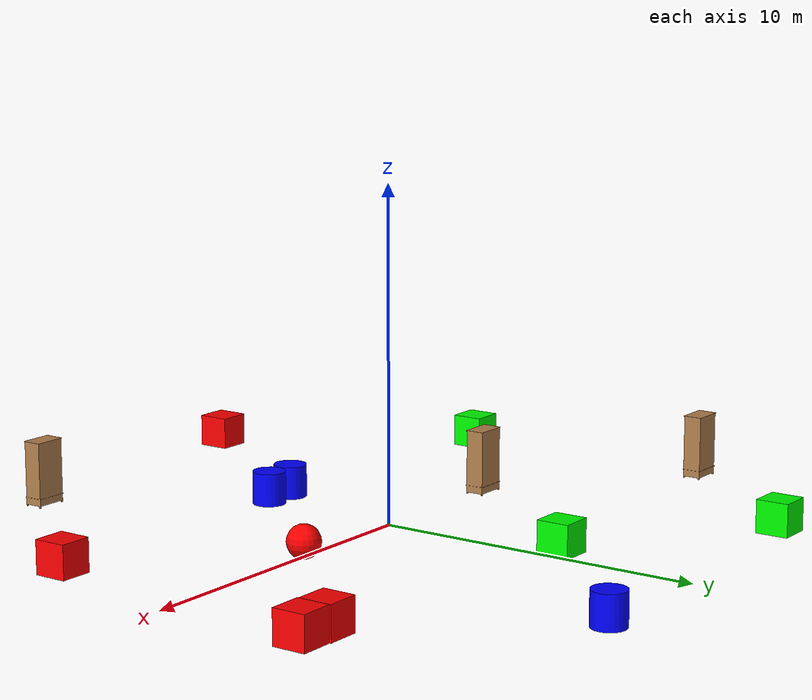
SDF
<?xml version='1.0'?>
<sdf version='1.6'>
  <model name='final'>
   <pose frame=''>0 0 0.35 0 -0 0</pose>
    <link name='link_0'>
      <inertial>
        <mass>1</mass>
        <inertia>
          <ixx>0.1</ixx>
          <ixy>0</ixy>
          <ixz>0</ixz>
          <iyy>0.1</iyy>
          <iyz>0</iyz>
          <izz>0.1</izz>
        </inertia>
      </inertial>
      <pose frame=''>4.00755 0.011429 0.107143 0 -0 0</pose>
      <visual name='visual'>
        <pose frame=''>0 0 0 0 -0 0</pose>
        <geometry>
          <sphere>
            <radius>0.5</radius>
          </sphere>
        </geometry>
        <material>
          <lighting>1</lighting>
          <script>
            <uri>file://media/materials/scripts/gazebo.material</uri>
            <name>Gazebo/Grey</name>
          </script>
            <ambient>1 0 0 1</ambient>
            <diffuse>1 0 0 1</diffuse>
            <specular>0 0 0 0</specular>
            <emissive>0 0 0 0</emissive>
        </material>
        <transparency>0</transparency>
        <cast_shadows>1</cast_shadows>
      </visual>
      <collision name='collision'>
        <laser_retro>0</laser_retro>
        <max_contacts>10</max_contacts>
        <pose frame=''>0 0 0 0 -0 0</pose>
        <geometry>
          <sphere>
            <radius>0.5</radius>
          </sphere>
        </geometry>
        <surface>
          <friction>
            <ode>
              <mu>1</mu>
              <mu2>1</mu2>
              <fdir1>0 0 0</fdir1>
              <slip1>0</slip1>
              <slip2>0</slip2>
            </ode>
            <torsional>
              <coefficient>1</coefficient>
              <patch_radius>0</patch_radius>
              <surface_radius>0</surface_radius>
              <use_patch_radius>1</use_patch_radius>
              <ode>
                <slip>0</slip>
              </ode>
            </torsional>
          </friction>
          <bounce>
            <restitution_coefficient>0</restitution_coefficient>
            <threshold>1e+06</threshold>
          </bounce>
          <contact>
            <collide_without_contact>0</collide_without_contact>
            <collide_without_contact_bitmask>1</collide_without_contact_bitmask>
            <collide_bitmask>1</collide_bitmask>
            <ode>
              <soft_cfm>0</soft_cfm>
              <soft_erp>0.2</soft_erp>
              <kp>1e+13</kp>
              <kd>1</kd>
              <max_vel>0.01</max_vel>
              <min_depth>0</min_depth>
            </ode>
            <bullet>
              <split_impulse>1</split_impulse>
              <split_impulse_penetration_threshold>-0.01</split_impulse_penetration_threshold>
              <soft_cfm>0</soft_cfm>
              <soft_erp>0.2</soft_erp>
              <kp>1e+13</kp>
              <kd>1</kd>
            </bullet>
          </contact>
        </surface>
      </collision>
    </link>
    <link name='link_1'>
      <inertial>
        <mass>1</mass>
        <inertia>
          <ixx>0.166667</ixx>
          <ixy>0</ixy>
          <ixz>0</ixz>
          <iyy>0.166667</iyy>
          <iyz>0</iyz>
          <izz>0.166667</izz>
        </inertia>
      </inertial>
      <pose frame=''>8.89484 4.56414 0.107143 0 -0 0</pose>
      <visual name='visual'>
        <pose frame=''>0 0 0 0 -0 0</pose>
        <geometry>
          <box>
            <size>1 1 1</size>
          </box>
        </geometry>
        <material>
          <lighting>1</lighting>
          <script>
            <uri>file://media/materials/scripts/gazebo.material</uri>
            <name>Gazebo/Grey</name>
          </script>
            <ambient>1 0 0 1</ambient>
            <diffuse>1 0 0 1</diffuse>
            <specular>0 0 0 0</specular>
            <emissive>0 0 0 0</emissive>
        </material>
        <transparency>0</transparency>
        <cast_shadows>1</cast_shadows>
      </visual>
      <collision name='collision'>
        <laser_retro>0</laser_retro>
        <max_contacts>10</max_contacts>
        <pose frame=''>0 0 0 0 -0 0</pose>
        <geometry>
          <box>
            <size>1 1 1</size>
          </box>
        </geometry>
        <surface>
          <friction>
            <ode>
              <mu>1</mu>
              <mu2>1</mu2>
              <fdir1>0 0 0</fdir1>
              <slip1>0</slip1>
              <slip2>0</slip2>
            </ode>
            <torsional>
              <coefficient>1</coefficient>
              <patch_radius>0</patch_radius>
              <surface_radius>0</surface_radius>
              <use_patch_radius>1</use_patch_radius>
              <ode>
                <slip>0</slip>
              </ode>
            </torsional>
          </friction>
          <bounce>
            <restitution_coefficient>0</restitution_coefficient>
            <threshold>1e+06</threshold>
          </bounce>
          <contact>
            <collide_without_contact>0</collide_without_contact>
            <collide_without_contact_bitmask>1</collide_without_contact_bitmask>
            <collide_bitmask>1</collide_bitmask>
            <ode>
              <soft_cfm>0</soft_cfm>
              <soft_erp>0.2</soft_erp>
              <kp>1e+13</kp>
              <kd>1</kd>
              <max_vel>0.01</max_vel>
              <min_depth>0</min_depth>
            </ode>
            <bullet>
              <split_impulse>1</split_impulse>
              <split_impulse_penetration_threshold>-0.01</split_impulse_penetration_threshold>
              <soft_cfm>0</soft_cfm>
              <soft_erp>0.2</soft_erp>
              <kp>1e+13</kp>
              <kd>1</kd>
            </bullet>
          </contact>
        </surface>
      </collision>
    </link>
    <link name='link_1_clone'>
      <inertial>
        <mass>1</mass>
        <inertia>
          <ixx>0.166667</ixx>
          <ixy>0</ixy>
          <ixz>0</ixz>
          <iyy>0.166667</iyy>
          <iyz>0</iyz>
          <izz>0.166667</izz>
        </inertia>
      </inertial>
      <pose frame=''>9.90892 4.52854 0.107143 0 -0 0</pose>
      <visual name='visual'>
        <pose frame=''>0 0 0 0 -0 0</pose>
        <geometry>
          <box>
            <size>1 1 1</size>
          </box>
        </geometry>
        <material>
          <lighting>1</lighting>
          <script>
            <uri>file://media/materials/scripts/gazebo.material</uri>
            <name>Gazebo/Grey</name>
          </script>
            <ambient>1 0 0 1</ambient>
            <diffuse>1 0 0 1</diffuse>
            <specular>0 0 0 0</specular>
            <emissive>0 0 0 0</emissive>
          <shader type='pixel'/>
        </material>
        <transparency>0</transparency>
        <cast_shadows>1</cast_shadows>
      </visual>
      <collision name='collision'>
        <laser_retro>0</laser_retro>
        <max_contacts>10</max_contacts>
        <pose frame=''>0 0 0 0 -0 0</pose>
        <geometry>
          <box>
            <size>1 1 1</size>
          </box>
        </geometry>
        <surface>
          <friction>
            <ode>
              <mu>1</mu>
              <mu2>1</mu2>
              <fdir1>0 0 0</fdir1>
              <slip1>0</slip1>
              <slip2>0</slip2>
            </ode>
            <torsional>
              <coefficient>1</coefficient>
              <patch_radius>0</patch_radius>
              <surface_radius>0</surface_radius>
              <use_patch_radius>1</use_patch_radius>
              <ode>
                <slip>0</slip>
              </ode>
            </torsional>
          </friction>
          <bounce>
            <restitution_coefficient>0</restitution_coefficient>
            <threshold>1e+06</threshold>
          </bounce>
          <contact>
            <collide_without_contact>0</collide_without_contact>
            <collide_without_contact_bitmask>1</collide_without_contact_bitmask>
            <collide_bitmask>1</collide_bitmask>
            <ode>
              <soft_cfm>0</soft_cfm>
              <soft_erp>0.2</soft_erp>
              <kp>1e+13</kp>
              <kd>1</kd>
              <max_vel>0.01</max_vel>
              <min_depth>0</min_depth>
            </ode>
            <bullet>
              <split_impulse>1</split_impulse>
              <split_impulse_penetration_threshold>-0.01</split_impulse_penetration_threshold>
              <soft_cfm>0</soft_cfm>
              <soft_erp>0.2</soft_erp>
              <kp>1e+13</kp>
              <kd>1</kd>
            </bullet>
          </contact>
        </surface>
      </collision>
    </link>
    <link name='link_2'>
      <inertial>
        <mass>1</mass>
        <inertia>
          <ixx>0.145833</ixx>
          <ixy>0</ixy>
          <ixz>0</ixz>
          <iyy>0.145833</iyy>
          <iyz>0</iyz>
          <izz>0.125</izz>
        </inertia>
      </inertial>
      <pose frame=''>4.29377 9.95126 0.107143 0 -0 0</pose>
      <visual name='visual'>
        <pose frame=''>0 0 0 0 -0 0</pose>
        <geometry>
          <cylinder>
            <radius>0.5</radius>
            <length>1</length>
          </cylinder>
        </geometry>
        <material>
          <lighting>1</lighting>
          <script>
            <uri>file://media/materials/scripts/gazebo.material</uri>
            <name>Gazebo/Grey</name>
          </script>
            <ambient>0 0 1 1</ambient>
            <diffuse>0 0 1 1</diffuse>
            <specular>0 0 0 0</specular>
            <emissive>0 0 0 0</emissive>
        </material>
        <transparency>0</transparency>
        <cast_shadows>1</cast_shadows>
      </visual>
      <collision name='collision'>
        <laser_retro>0</laser_retro>
        <max_contacts>10</max_contacts>
        <pose frame=''>0 0 0 0 -0 0</pose>
        <geometry>
          <cylinder>
            <radius>0.5</radius>
            <length>1</length>
          </cylinder>
        </geometry>
        <surface>
          <friction>
            <ode>
              <mu>1</mu>
              <mu2>1</mu2>
              <fdir1>0 0 0</fdir1>
              <slip1>0</slip1>
              <slip2>0</slip2>
            </ode>
            <torsional>
              <coefficient>1</coefficient>
              <patch_radius>0</patch_radius>
              <surface_radius>0</surface_radius>
              <use_patch_radius>1</use_patch_radius>
              <ode>
                <slip>0</slip>
              </ode>
            </torsional>
          </friction>
          <bounce>
            <restitution_coefficient>0</restitution_coefficient>
            <threshold>1e+06</threshold>
          </bounce>
          <contact>
            <collide_without_contact>0</collide_without_contact>
            <collide_without_contact_bitmask>1</collide_without_contact_bitmask>
            <collide_bitmask>1</collide_bitmask>
            <ode>
              <soft_cfm>0</soft_cfm>
              <soft_erp>0.2</soft_erp>
              <kp>1e+13</kp>
              <kd>1</kd>
              <max_vel>0.01</max_vel>
              <min_depth>0</min_depth>
            </ode>
            <bullet>
              <split_impulse>1</split_impulse>
              <split_impulse_penetration_threshold>-0.01</split_impulse_penetration_threshold>
              <soft_cfm>0</soft_cfm>
              <soft_erp>0.2</soft_erp>
              <kp>1e+13</kp>
              <kd>1</kd>
            </bullet>
          </contact>
        </surface>
      </collision>
    </link>
    <link name='link_3'>
      <inertial>
        <mass>1</mass>
        <inertia>
          <ixx>0.166667</ixx>
          <ixy>0</ixy>
          <ixz>0</ixz>
          <iyy>0.166667</iyy>
          <iyz>0</iyz>
          <izz>0.166667</izz>
        </inertia>
      </inertial>
      <pose frame=''>-0.595827 5.51828 0.107143 0 -0 0</pose>
      <visual name='visual'>
        <pose frame=''>0 0 0 0 -0 0</pose>
        <geometry>
          <box>
            <size>1 1 1</size>
          </box>
        </geometry>
        <material>
          <lighting>1</lighting>
          <script>
            <uri>file://media/materials/scripts/gazebo.material</uri>
            <name>Gazebo/Grey</name>
          </script>
            <ambient>0 1 0 1</ambient>
            <diffuse>0 1 0 1</diffuse>
            <specular>0 0 0 0</specular>
            <emissive>0 0 0 0</emissive>
        </material>
        <transparency>0</transparency>
        <cast_shadows>1</cast_shadows>
      </visual>
      <collision name='collision'>
        <laser_retro>0</laser_retro>
        <max_contacts>10</max_contacts>
        <pose frame=''>0 0 0 0 -0 0</pose>
        <geometry>
          <box>
            <size>1 1 1</size>
          </box>
        </geometry>
        <surface>
          <friction>
            <ode>
              <mu>1</mu>
              <mu2>1</mu2>
              <fdir1>0 0 0</fdir1>
              <slip1>0</slip1>
              <slip2>0</slip2>
            </ode>
            <torsional>
              <coefficient>1</coefficient>
              <patch_radius>0</patch_radius>
              <surface_radius>0</surface_radius>
              <use_patch_radius>1</use_patch_radius>
              <ode>
                <slip>0</slip>
              </ode>
            </torsional>
          </friction>
          <bounce>
            <restitution_coefficient>0</restitution_coefficient>
            <threshold>1e+06</threshold>
          </bounce>
          <contact>
            <collide_without_contact>0</collide_without_contact>
            <collide_without_contact_bitmask>1</collide_without_contact_bitmask>
            <collide_bitmask>1</collide_bitmask>
            <ode>
              <soft_cfm>0</soft_cfm>
              <soft_erp>0.2</soft_erp>
              <kp>1e+13</kp>
              <kd>1</kd>
              <max_vel>0.01</max_vel>
              <min_depth>0</min_depth>
            </ode>
            <bullet>
              <split_impulse>1</split_impulse>
              <split_impulse_penetration_threshold>-0.01</split_impulse_penetration_threshold>
              <soft_cfm>0</soft_cfm>
              <soft_erp>0.2</soft_erp>
              <kp>1e+13</kp>
              <kd>1</kd>
            </bullet>
          </contact>
        </surface>
      </collision>
    </link>
    <link name='link_4'>
      <inertial>
        <mass>1</mass>
        <inertia>
          <ixx>0.166667</ixx>
          <ixy>0</ixy>
          <ixz>0</ixz>
          <iyy>0.166667</iyy>
          <iyz>0</iyz>
          <izz>0.166667</izz>
        </inertia>
      </inertial>
      <pose frame=''>-6.11535 9.47467 0.107143 0 -0 0</pose>
      <visual name='visual'>
        <pose frame=''>0 0 0 0 -0 0</pose>
        <geometry>
          <box>
            <size>1 1 1</size>
          </box>
        </geometry>
        <material>
          <lighting>1</lighting>
          <script>
            <uri>file://media/materials/scripts/gazebo.material</uri>
            <name>Gazebo/Grey</name>
          </script>
            <ambient>0 1 0 1</ambient>
            <diffuse>0 1 0 1</diffuse>
            <specular>0 0 0 0</specular>
            <emissive>0 0 0 0</emissive>
        </material>
        <transparency>0</transparency>
        <cast_shadows>1</cast_shadows>
      </visual>
      <collision name='collision'>
        <laser_retro>0</laser_retro>
        <max_contacts>10</max_contacts>
        <pose frame=''>0 0 0 0 -0 0</pose>
        <geometry>
          <box>
            <size>1 1 1</size>
          </box>
        </geometry>
        <surface>
          <friction>
            <ode>
              <mu>1</mu>
              <mu2>1</mu2>
              <fdir1>0 0 0</fdir1>
              <slip1>0</slip1>
              <slip2>0</slip2>
            </ode>
            <torsional>
              <coefficient>1</coefficient>
              <patch_radius>0</patch_radius>
              <surface_radius>0</surface_radius>
              <use_patch_radius>1</use_patch_radius>
              <ode>
                <slip>0</slip>
              </ode>
            </torsional>
          </friction>
          <bounce>
            <restitution_coefficient>0</restitution_coefficient>
            <threshold>1e+06</threshold>
          </bounce>
          <contact>
            <collide_without_contact>0</collide_without_contact>
            <collide_without_contact_bitmask>1</collide_without_contact_bitmask>
            <collide_bitmask>1</collide_bitmask>
            <ode>
              <soft_cfm>0</soft_cfm>
              <soft_erp>0.2</soft_erp>
              <kp>1e+13</kp>
              <kd>1</kd>
              <max_vel>0.01</max_vel>
              <min_depth>0</min_depth>
            </ode>
            <bullet>
              <split_impulse>1</split_impulse>
              <split_impulse_penetration_threshold>-0.01</split_impulse_penetration_threshold>
              <soft_cfm>0</soft_cfm>
              <soft_erp>0.2</soft_erp>
              <kp>1e+13</kp>
              <kd>1</kd>
            </bullet>
          </contact>
        </surface>
      </collision>
    </link>
    <link name='link_5'>
      <inertial>
        <mass>1</mass>
        <inertia>
          <ixx>0.145833</ixx>
          <ixy>0</ixy>
          <ixz>0</ixz>
          <iyy>0.145833</iyy>
          <iyz>0</iyz>
          <izz>0.125</izz>
        </inertia>
      </inertial>
      <pose frame=''>-1.10641 -4.50979 0.107143 0 -0 0</pose>
      <visual name='visual'>
        <pose frame=''>0 0 0 0 -0 0</pose>
        <geometry>
          <cylinder>
            <radius>0.5</radius>
            <length>1</length>
          </cylinder>
        </geometry>
        <material>
          <lighting>1</lighting>
          <script>
            <uri>file://media/materials/scripts/gazebo.material</uri>
            <name>Gazebo/Grey</name>
          </script>
            <ambient>0 0 1 1</ambient>
            <diffuse>0 0 1 1</diffuse>
            <specular>0 0 0 0</specular>
            <emissive>0 0 0 0</emissive>
        </material>
        <transparency>0</transparency>
        <cast_shadows>1</cast_shadows>
      </visual>
      <collision name='collision'>
        <laser_retro>0</laser_retro>
        <max_contacts>10</max_contacts>
        <pose frame=''>0 0 0 0 -0 0</pose>
        <geometry>
          <cylinder>
            <radius>0.5</radius>
            <length>1</length>
          </cylinder>
        </geometry>
        <surface>
          <friction>
            <ode>
              <mu>1</mu>
              <mu2>1</mu2>
              <fdir1>0 0 0</fdir1>
              <slip1>0</slip1>
              <slip2>0</slip2>
            </ode>
            <torsional>
              <coefficient>1</coefficient>
              <patch_radius>0</patch_radius>
              <surface_radius>0</surface_radius>
              <use_patch_radius>1</use_patch_radius>
              <ode>
                <slip>0</slip>
              </ode>
            </torsional>
          </friction>
          <bounce>
            <restitution_coefficient>0</restitution_coefficient>
            <threshold>1e+06</threshold>
          </bounce>
          <contact>
            <collide_without_contact>0</collide_without_contact>
            <collide_without_contact_bitmask>1</collide_without_contact_bitmask>
            <collide_bitmask>1</collide_bitmask>
            <ode>
              <soft_cfm>0</soft_cfm>
              <soft_erp>0.2</soft_erp>
              <kp>1e+13</kp>
              <kd>1</kd>
              <max_vel>0.01</max_vel>
              <min_depth>0</min_depth>
            </ode>
            <bullet>
              <split_impulse>1</split_impulse>
              <split_impulse_penetration_threshold>-0.01</split_impulse_penetration_threshold>
              <soft_cfm>0</soft_cfm>
              <soft_erp>0.2</soft_erp>
              <kp>1e+13</kp>
              <kd>1</kd>
            </bullet>
          </contact>
        </surface>
      </collision>
    </link>
    <link name='link_5_clone'>
      <inertial>
        <mass>1</mass>
        <inertia>
          <ixx>0.145833</ixx>
          <ixy>0</ixy>
          <ixz>0</ixz>
          <iyy>0.145833</iyy>
          <iyz>0</iyz>
          <izz>0.125</izz>
        </inertia>
      </inertial>
      <pose frame=''>-0.072858 -4.49552 0.107143 0 -0 0</pose>
      <visual name='visual'>
        <pose frame=''>0 0 0 0 -0 0</pose>
        <geometry>
          <cylinder>
            <radius>0.5</radius>
            <length>1</length>
          </cylinder>
        </geometry>
        <material>
          <lighting>1</lighting>
          <script>
            <uri>file://media/materials/scripts/gazebo.material</uri>
            <name>Gazebo/Grey</name>
          </script>
            <ambient>0 0 1 1</ambient>
            <diffuse>0 0 1 1</diffuse>
            <specular>0 0 0 0</specular>
            <emissive>0 0 0 0</emissive>
          <shader type='pixel'/>
        </material>
        <transparency>0</transparency>
        <cast_shadows>1</cast_shadows>
      </visual>
      <collision name='collision'>
        <laser_retro>0</laser_retro>
        <max_contacts>10</max_contacts>
        <pose frame=''>0 0 0 0 -0 0</pose>
        <geometry>
          <cylinder>
            <radius>0.5</radius>
            <length>1</length>
          </cylinder>
        </geometry>
        <surface>
          <friction>
            <ode>
              <mu>1</mu>
              <mu2>1</mu2>
              <fdir1>0 0 0</fdir1>
              <slip1>0</slip1>
              <slip2>0</slip2>
            </ode>
            <torsional>
              <coefficient>1</coefficient>
              <patch_radius>0</patch_radius>
              <surface_radius>0</surface_radius>
              <use_patch_radius>1</use_patch_radius>
              <ode>
                <slip>0</slip>
              </ode>
            </torsional>
          </friction>
          <bounce>
            <restitution_coefficient>0</restitution_coefficient>
            <threshold>1e+06</threshold>
          </bounce>
          <contact>
            <collide_without_contact>0</collide_without_contact>
            <collide_without_contact_bitmask>1</collide_without_contact_bitmask>
            <collide_bitmask>1</collide_bitmask>
            <ode>
              <soft_cfm>0</soft_cfm>
              <soft_erp>0.2</soft_erp>
              <kp>1e+13</kp>
              <kd>1</kd>
              <max_vel>0.01</max_vel>
              <min_depth>0</min_depth>
            </ode>
            <bullet>
              <split_impulse>1</split_impulse>
              <split_impulse_penetration_threshold>-0.01</split_impulse_penetration_threshold>
              <soft_cfm>0</soft_cfm>
              <soft_erp>0.2</soft_erp>
              <kp>1e+13</kp>
              <kd>1</kd>
            </bullet>
          </contact>
        </surface>
      </collision>
    </link>
    <link name='link_6'>
      <inertial>
        <mass>1</mass>
        <inertia>
          <ixx>0.166667</ixx>
          <ixy>0</ixy>
          <ixz>0</ixz>
          <iyy>0.166667</iyy>
          <iyz>0</iyz>
          <izz>0.166667</izz>
        </inertia>
      </inertial>
      <pose frame=''>-5.09672 -10.5276 0.107143 0 -0 0</pose>
      <visual name='visual'>
        <pose frame=''>0 0 0 0 -0 0</pose>
        <geometry>
          <box>
            <size>1 1 1</size>
          </box>
        </geometry>
        <material>
          <lighting>1</lighting>
          <script>
            <uri>file://media/materials/scripts/gazebo.material</uri>
            <name>Gazebo/Grey</name>
          </script>
            <ambient>1 0 0 1</ambient>
            <diffuse>1 0 0 1</diffuse>
            <specular>0 0 0 0</specular>
            <emissive>0 0 0 0</emissive>
        </material>
        <transparency>0</transparency>
        <cast_shadows>1</cast_shadows>
      </visual>
      <collision name='collision'>
        <laser_retro>0</laser_retro>
        <max_contacts>10</max_contacts>
        <pose frame=''>0 0 0 0 -0 0</pose>
        <geometry>
          <box>
            <size>1 1 1</size>
          </box>
        </geometry>
        <surface>
          <friction>
            <ode>
              <mu>1</mu>
              <mu2>1</mu2>
              <fdir1>0 0 0</fdir1>
              <slip1>0</slip1>
              <slip2>0</slip2>
            </ode>
            <torsional>
              <coefficient>1</coefficient>
              <patch_radius>0</patch_radius>
              <surface_radius>0</surface_radius>
              <use_patch_radius>1</use_patch_radius>
              <ode>
                <slip>0</slip>
              </ode>
            </torsional>
          </friction>
          <bounce>
            <restitution_coefficient>0</restitution_coefficient>
            <threshold>1e+06</threshold>
          </bounce>
          <contact>
            <collide_without_contact>0</collide_without_contact>
            <collide_without_contact_bitmask>1</collide_without_contact_bitmask>
            <collide_bitmask>1</collide_bitmask>
            <ode>
              <soft_cfm>0</soft_cfm>
              <soft_erp>0.2</soft_erp>
              <kp>1e+13</kp>
              <kd>1</kd>
              <max_vel>0.01</max_vel>
              <min_depth>0</min_depth>
            </ode>
            <bullet>
              <split_impulse>1</split_impulse>
              <split_impulse_penetration_threshold>-0.01</split_impulse_penetration_threshold>
              <soft_cfm>0</soft_cfm>
              <soft_erp>0.2</soft_erp>
              <kp>1e+13</kp>
              <kd>1</kd>
            </bullet>
          </contact>
        </surface>
      </collision>
    </link>
    <link name='link_7'>
      <inertial>
        <mass>1</mass>
        <inertia>
          <ixx>0.166667</ixx>
          <ixy>0</ixy>
          <ixz>0</ixz>
          <iyy>0.166667</iyy>
          <iyz>0</iyz>
          <izz>0.166667</izz>
        </inertia>
      </inertial>
      <pose frame=''>-10.017 -3.69636 0.107143 0 -0 0</pose>
      <visual name='visual'>
        <pose frame=''>0 0 0 0 -0 0</pose>
        <geometry>
          <box>
            <size>1 1 1</size>
          </box>
        </geometry>
        <material>
          <lighting>1</lighting>
          <script>
            <uri>file://media/materials/scripts/gazebo.material</uri>
            <name>Gazebo/Grey</name>
          </script>
            <ambient>0 1 0 1</ambient>
            <diffuse>0 1 0 1</diffuse>
            <specular>0 0 0 0</specular>
            <emissive>0 0 0 0</emissive>
        </material>
        <transparency>0</transparency>
        <cast_shadows>1</cast_shadows>
      </visual>
      <collision name='collision'>
        <laser_retro>0</laser_retro>
        <max_contacts>10</max_contacts>
        <pose frame=''>0 0 0 0 -0 0</pose>
        <geometry>
          <box>
            <size>1 1 1</size>
          </box>
        </geometry>
        <surface>
          <friction>
            <ode>
              <mu>1</mu>
              <mu2>1</mu2>
              <fdir1>0 0 0</fdir1>
              <slip1>0</slip1>
              <slip2>0</slip2>
            </ode>
            <torsional>
              <coefficient>1</coefficient>
              <patch_radius>0</patch_radius>
              <surface_radius>0</surface_radius>
              <use_patch_radius>1</use_patch_radius>
              <ode>
                <slip>0</slip>
              </ode>
            </torsional>
          </friction>
          <bounce>
            <restitution_coefficient>0</restitution_coefficient>
            <threshold>1e+06</threshold>
          </bounce>
          <contact>
            <collide_without_contact>0</collide_without_contact>
            <collide_without_contact_bitmask>1</collide_without_contact_bitmask>
            <collide_bitmask>1</collide_bitmask>
            <ode>
              <soft_cfm>0</soft_cfm>
              <soft_erp>0.2</soft_erp>
              <kp>1e+13</kp>
              <kd>1</kd>
              <max_vel>0.01</max_vel>
              <min_depth>0</min_depth>
            </ode>
            <bullet>
              <split_impulse>1</split_impulse>
              <split_impulse_penetration_threshold>-0.01</split_impulse_penetration_threshold>
              <soft_cfm>0</soft_cfm>
              <soft_erp>0.2</soft_erp>
              <kp>1e+13</kp>
              <kd>1</kd>
            </bullet>
          </contact>
        </surface>
      </collision>
    </link>
    <link name='link_8'>
      <inertial>
        <mass>1</mass>
        <inertia>
          <ixx>0.166667</ixx>
          <ixy>0</ixy>
          <ixz>0</ixz>
          <iyy>0.166667</iyy>
          <iyz>0</iyz>
          <izz>0.166667</izz>
        </inertia>
      </inertial>
      <pose frame=''>8.91293 -4.43394 0.107143 0 -0 0</pose>
      <visual name='visual'>
        <pose frame=''>0 0 0 0 -0 0</pose>
        <geometry>
          <box>
            <size>1 1 1</size>
          </box>
        </geometry>
        <material>
          <lighting>1</lighting>
          <script>
            <uri>file://media/materials/scripts/gazebo.material</uri>
            <name>Gazebo/Grey</name>
          </script>
            <ambient>1 0 0 1</ambient>
            <diffuse>1 0 0 1</diffuse>
            <specular>0 0 0 0</specular>
            <emissive>0 0 0 0</emissive>
        </material>
        <transparency>0</transparency>
        <cast_shadows>1</cast_shadows>
      </visual>
      <collision name='collision'>
        <laser_retro>0</laser_retro>
        <max_contacts>10</max_contacts>
        <pose frame=''>0 0 0 0 -0 0</pose>
        <geometry>
          <box>
            <size>1 1 1</size>
          </box>
        </geometry>
        <surface>
          <friction>
            <ode>
              <mu>1</mu>
              <mu2>1</mu2>
              <fdir1>0 0 0</fdir1>
              <slip1>0</slip1>
              <slip2>0</slip2>
            </ode>
            <torsional>
              <coefficient>1</coefficient>
              <patch_radius>0</patch_radius>
              <surface_radius>0</surface_radius>
              <use_patch_radius>1</use_patch_radius>
              <ode>
                <slip>0</slip>
              </ode>
            </torsional>
          </friction>
          <bounce>
            <restitution_coefficient>0</restitution_coefficient>
            <threshold>1e+06</threshold>
          </bounce>
          <contact>
            <collide_without_contact>0</collide_without_contact>
            <collide_without_contact_bitmask>1</collide_without_contact_bitmask>
            <collide_bitmask>1</collide_bitmask>
            <ode>
              <soft_cfm>0</soft_cfm>
              <soft_erp>0.2</soft_erp>
              <kp>1e+13</kp>
              <kd>1</kd>
              <max_vel>0.01</max_vel>
              <min_depth>0</min_depth>
            </ode>
            <bullet>
              <split_impulse>1</split_impulse>
              <split_impulse_penetration_threshold>-0.01</split_impulse_penetration_threshold>
              <soft_cfm>0</soft_cfm>
              <soft_erp>0.2</soft_erp>
              <kp>1e+13</kp>
              <kd>1</kd>
            </bullet>
          </contact>
        </surface>
      </collision>
    </link>
    <model name='wardrobe'>
      <static>1</static>
      <link name='link'>
        <collision name='colision1'>
          <pose frame=''>0 0 0 0 -0 0</pose>
          <geometry>
            <mesh>
              <uri>model://wardrobe/meshes/wardrobe.stl</uri>
              <scale>1 1 1</scale>
            </mesh>
          </geometry>
          <surface>
            <bounce/>
            <friction>
              <ode/>
            </friction>
            <contact>
              <ode/>
            </contact>
          </surface>
        </collision>
        <visual name='visual1'>
          <pose frame=''>0 0 0 0 -0 0</pose>
          <geometry>
            <mesh>
              <uri>model://wardrobe/meshes/wardrobe.stl</uri>
              <scale>1 1 1</scale>
            </mesh>
          </geometry>
          <material>
            <script>
              <uri>file://media/materials/scripts/gazebo.material</uri>
              <name>Gazebo/WoodPallet</name>
            </script>
          </material>
        </visual>
        <velocity_decay>
          <linear>0</linear>
          <angular>0</angular>
        </velocity_decay>
        <self_collide>0</self_collide>
        <kinematic>0</kinematic>
        <gravity>1</gravity>
      </link>
      <pose frame=''>-5.42526 -0.28993 -0.392857 0 -0 0</pose>
    </model>
    <model name='wardrobe_0'>
      <static>1</static>
      <link name='link'>
        <collision name='colision1'>
          <pose frame=''>0 0 0 0 -0 0</pose>
          <geometry>
            <mesh>
              <uri>model://wardrobe/meshes/wardrobe.stl</uri>
              <scale>1 1 1</scale>
            </mesh>
          </geometry>
          <surface>
            <bounce/>
            <friction>
              <ode/>
            </friction>
            <contact>
              <ode/>
            </contact>
          </surface>
        </collision>
        <visual name='visual1'>
          <pose frame=''>0 0 0 0 -0 0</pose>
          <geometry>
            <mesh>
              <uri>model://wardrobe/meshes/wardrobe.stl</uri>
              <scale>1 1 1</scale>
            </mesh>
          </geometry>
          <material>
            <script>
              <uri>file://media/materials/scripts/gazebo.material</uri>
              <name>Gazebo/WoodPallet</name>
            </script>
          </material>
        </visual>
        <velocity_decay>
          <linear>0</linear>
          <angular>0</angular>
        </velocity_decay>
        <self_collide>0</self_collide>
        <kinematic>0</kinematic>
        <gravity>1</gravity>
      </link>
      <pose frame=''>-11.0248 4.16123 -0.392857 0 -0 0</pose>
    </model>
    <model name='wardrobe_1'>
      <static>1</static>
      <link name='link'>
        <collision name='colision1'>
          <pose frame=''>0 0 0 0 -0 0</pose>
          <geometry>
            <mesh>
              <uri>model://wardrobe/meshes/wardrobe.stl</uri>
              <scale>1 1 1</scale>
            </mesh>
          </geometry>
          <surface>
            <bounce/>
            <friction>
              <ode/>
            </friction>
            <contact>
              <ode/>
            </contact>
          </surface>
        </collision>
        <visual name='visual1'>
          <pose frame=''>0 0 0 0 -0 0</pose>
          <geometry>
            <mesh>
              <uri>model://wardrobe/meshes/wardrobe.stl</uri>
              <scale>1 1 1</scale>
            </mesh>
          </geometry>
          <material>
            <script>
              <uri>file://media/materials/scripts/gazebo.material</uri>
              <name>Gazebo/WoodPallet</name>
            </script>
          </material>
        </visual>
        <velocity_decay>
          <linear>0</linear>
          <angular>0</angular>
        </velocity_decay>
        <self_collide>0</self_collide>
        <kinematic>0</kinematic>
        <gravity>1</gravity>
      </link>
      <pose frame=''>3.43611 -10.2564 -0.392857 0 -0 0</pose>
    </model>
    <static>0</static>
    <allow_auto_disable>1</allow_auto_disable>
  </model>
</sdf>
